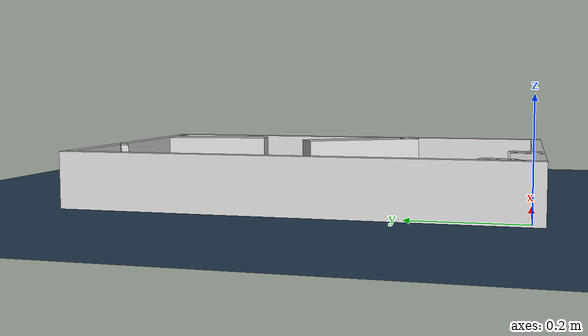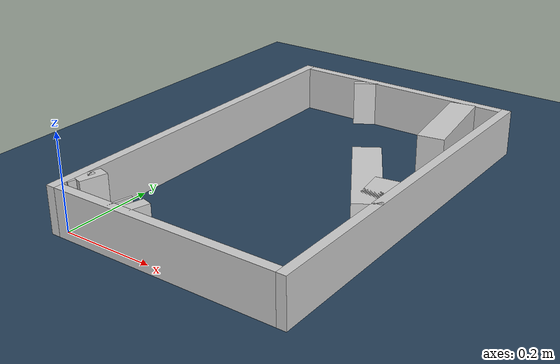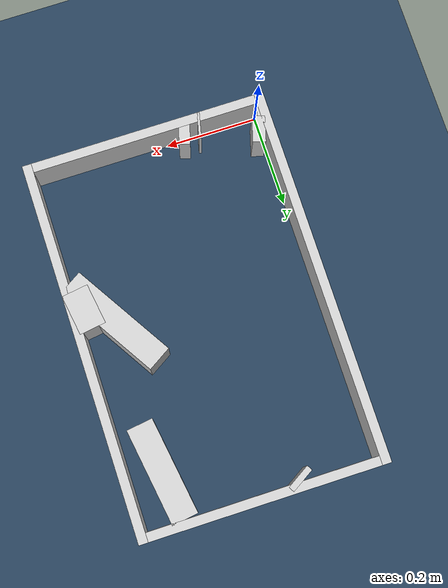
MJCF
<?xml version="1.0" ?>
<mujoco model="generated_real_template">
  <compiler angle="degree"/>
  <option timestep="0.002" integrator="implicitfast" iterations="100" cone="elliptic"/>
  <default>
    <geom density="1"/>
  </default>
  <asset>
    <texture builtin="gradient" height="3072" rgb1="0.3 0.5 0.7" rgb2="0 0 0" type="skybox" width="512"/>
    <texture builtin="checker" height="300" mark="edge" markrgb="0.8 0.8 0.8" name="groundplane" rgb1="0.2 0.3 0.4" rgb2="0.1 0.2 0.3" type="2d" width="300"/>
    <material name="groundplane" reflectance="0.2" texrepeat="5 5" texture="groundplane" texuniform="true"/>
  </asset>
  <worldbody>
    <light dir="0 0 -1" directional="true" pos="0 0 1.5"/>
    <geom name="floor" type="plane" condim="4" friction="0.5 0.005 0.001" material="groundplane" size="0 0 0.05"/>
    <body name="walls">
      <geom name="wall_boundary_left" type="box" condim="4" friction="1.0 0.005 0.0001" rgba="0.8 0.8 0.8 1" pos="-0.010000 0.387500 0.050000" euler="0 0 0.000000" size="0.010000 0.407500 0.050000"/>
      <geom name="wall_boundary_right" type="box" condim="4" friction="1.0 0.005 0.0001" rgba="0.8 0.8 0.8 1" pos="0.500000 0.387500 0.050000" euler="0 0 0.000000" size="0.010000 0.407500 0.050000"/>
      <geom name="wall_boundary_bottom" type="box" condim="4" friction="1.0 0.005 0.0001" rgba="0.8 0.8 0.8 1" pos="0.245000 -0.010000 0.050000" euler="0 0 0.000000" size="0.245000 0.010000 0.050000"/>
      <geom name="wall_boundary_top" type="box" condim="4" friction="1.0 0.005 0.0001" rgba="0.8 0.8 0.8 1" pos="0.245000 0.785000 0.050000" euler="0 0 0.000000" size="0.245000 0.010000 0.050000"/>
      <geom name="wall_inner_1_1" type="box" condim="4" friction="1.0 0.005 0.0001" rgba="0.8 0.8 0.8 1" pos="0.475417 0.309488 0.050000" euler="0 0 98.379903" size="0.043822 0.028500 0.050000"/>
      <geom name="wall_inner_1_2" type="box" condim="4" friction="1.0 0.005 0.0001" rgba="0.8 0.8 0.8 1" pos="0.422105 0.671396 0.050000" euler="0 0 98.379903" size="0.104722 0.028500 0.050000"/>
      <geom name="wall_inner_2_1" type="box" condim="4" friction="1.0 0.005 0.0001" rgba="0.8 0.8 0.8 1" pos="0.004893 0.038211 0.050000" euler="0 0 -13.406862" size="0.005031 0.028500 0.050000"/>
      <geom name="wall_inner_2_2" type="box" condim="4" friction="1.0 0.005 0.0001" rgba="0.8 0.8 0.8 1" pos="0.130267 0.008327 0.050000" euler="0 0 -13.406862" size="0.002597 0.028500 0.050000"/>
      <geom name="wall_inner_3_1" type="box" condim="4" friction="1.0 0.005 0.0001" rgba="0.8 0.8 0.8 1" pos="0.422108 0.350665 0.050000" euler="0 0 121.645560" size="0.121276 0.028500 0.050000"/>
      <geom name="wall_inner_3_2" type="box" condim="4" friction="1.0 0.005 0.0001" rgba="0.8 0.8 0.8 1" pos="0.164013 0.769446 0.050000" euler="0 0 121.645560" size="0.006524 0.028500 0.050000"/>
      <geom name="wall_inner_4_1" type="box" condim="4" friction="1.0 0.005 0.0001" rgba="0.8 0.8 0.8 1" pos="0.163779 0.010625 0.050000" euler="0 0 163.983616" size="0.011707 0.028500 0.050000"/>
      <geom name="wall_inner_4_2" type="box" condim="4" friction="1.0 0.005 0.0001" rgba="0.8 0.8 0.8 1" pos="0.013218 0.053844 0.050000" euler="0 0 163.983616" size="0.013752 0.028500 0.050000"/>
    </body>
  </worldbody>
</mujoco>
